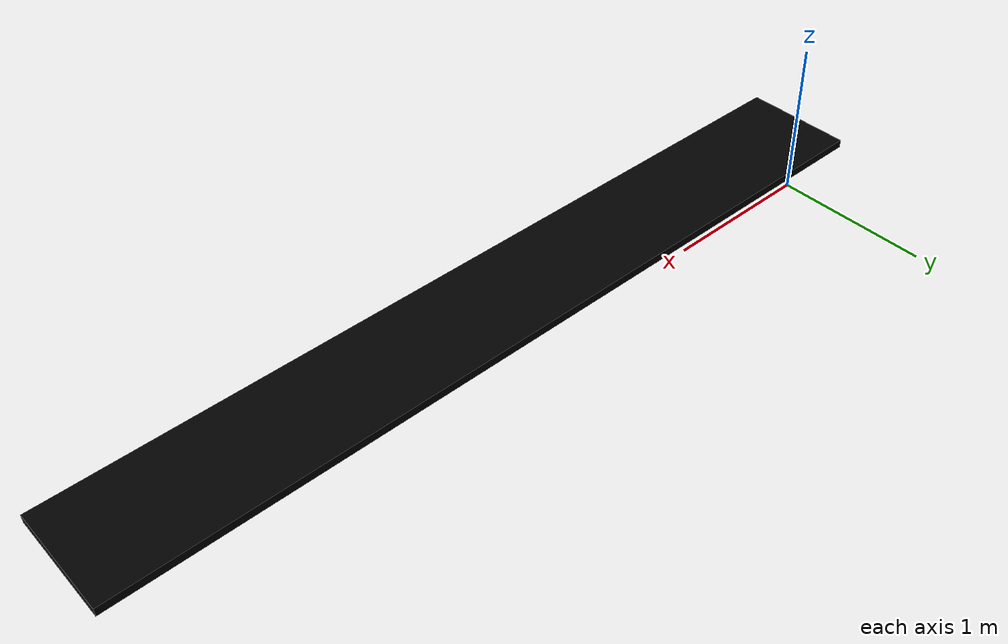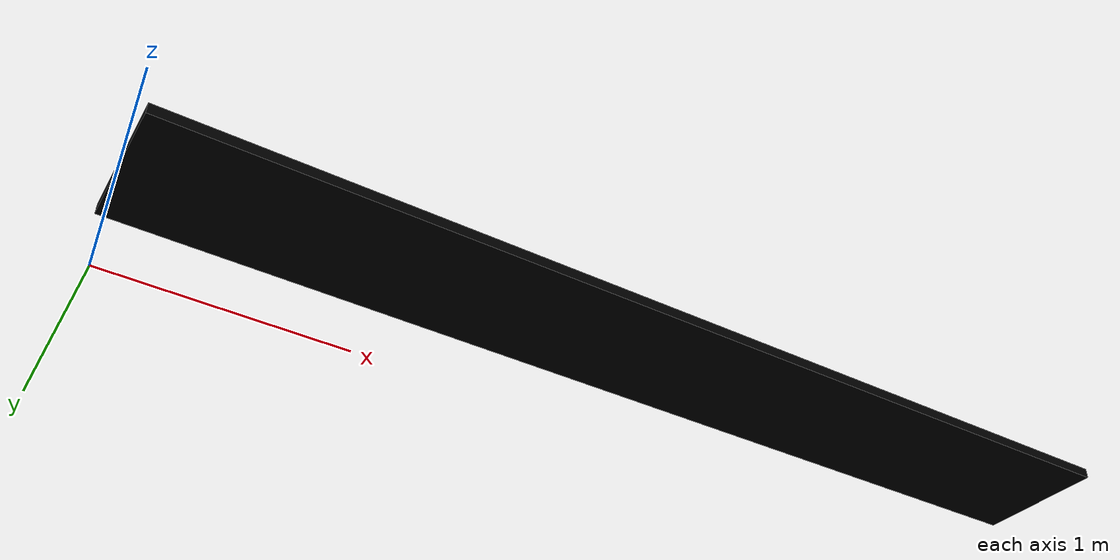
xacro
<?xml version="1.0"?>

<robot xmlns:xacro="http://ros.org/wiki/xacro"
       name="conveyor">

    <gazebo>
        <plugin name="gazebo_ros_control" filename="libgazebo_ros_control.so">
            <robotNamespace>/conveyor</robotNamespace>
        </plugin>
    </gazebo>

    <link name="world"/>

     <xacro:property name="conveyor_width" value="0.67"/>
     <xacro:property name="conveyor_length" value="5.0"/>
     <xacro:property name="conveyor_mass" value="100.0"/>
     <xacro:property name="conveyor_height" value="0.05"/>

     <xacro:property name="conveyor_heigh_world" value="0.5"/>

    <link name="conveyor_link">
        <visual>
            <origin xyz="${conveyor_length/2} 0 0" rpy="0 0 0"/>
            <geometry>
                <box size="${conveyor_length} ${conveyor_width} ${conveyor_height}"/>
            </geometry>
            <material name="Black">
                <color rgba="0 0.0 0.0 1.0"/>
            </material>
        </visual>
        <collision>
            <origin xyz="${conveyor_length/2} 0 0" rpy="0 0 0"/>
            <geometry>
                <box size="${conveyor_length} ${conveyor_width} ${conveyor_height}"/>
            </geometry>
        </collision>
        <inertial>
            <mass value="${conveyor_mass}"/>
            <inertia ixx="${(conveyor_mass / 12) * (conveyor_width * conveyor_width + conveyor_height * conveyor_height) }" ixy="0.0" ixz="0.0" iyy="${(conveyor_mass / 12) * (conveyor_length * conveyor_length + conveyor_height * conveyor_height) }" iyz="0.0" izz="${(conveyor_mass / 12) * (conveyor_length * conveyor_length + conveyor_width * conveyor_width) }"/>
        </inertial>
    </link>

    <gazebo reference="conveyor_link">
        <material>Gazebo/Black</material>
        <mu1>1000.0</mu1>
        <mu2>1000.0</mu2>
    </gazebo>

    <joint name="world_conveyor_joint" type="prismatic">
        <origin xyz="0 0 ${conveyor_heigh_world}" rpy="0.0 0.0 0.0"/>
        <parent link="world" />
        <child link="conveyor_link" />
        <axis xyz="1 0 0" />
        <limit effort="10000" lower="-5.0" upper="5.0" velocity="1000" />
    </joint>

    <transmission name="tran1">
        <type>transmission_interface/SimpleTransmission</type>
        <joint name="world_conveyor_joint">
            <hardwareInterface>hardware_interface/EffortJointInterface</hardwareInterface>
        </joint>
        <actuator name="motor1">
            <hardwareInterface>hardware_interface/EffortJointInterface</hardwareInterface>
            <mechanicalReduction>1</mechanicalReduction>
        </actuator>
    </transmission>

</robot>
